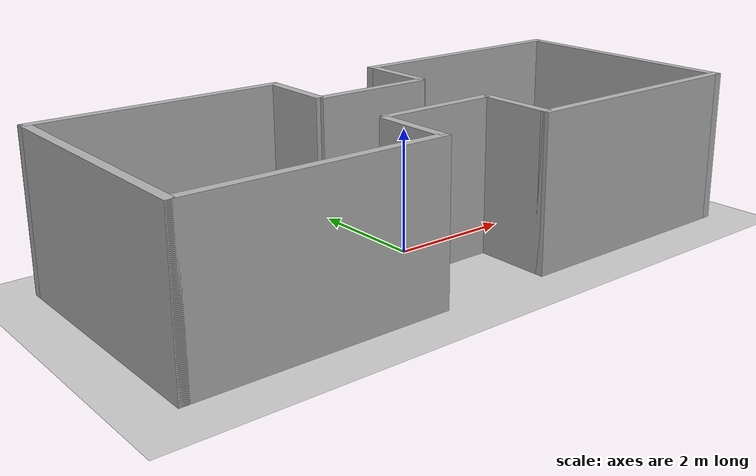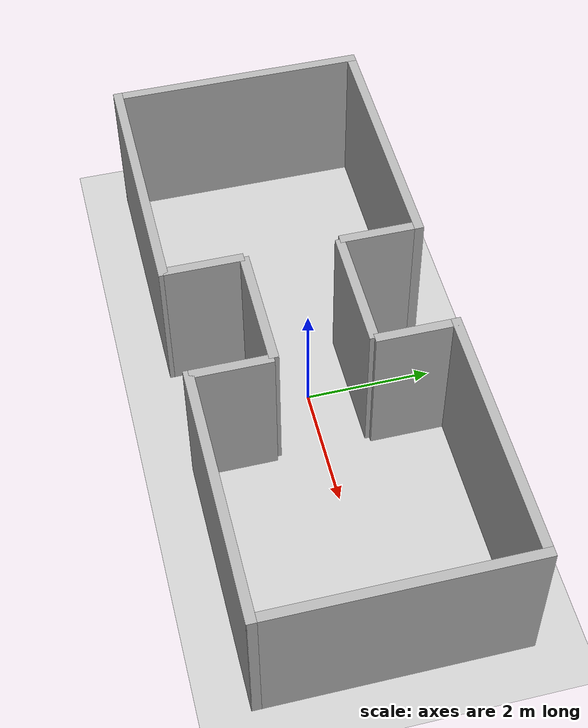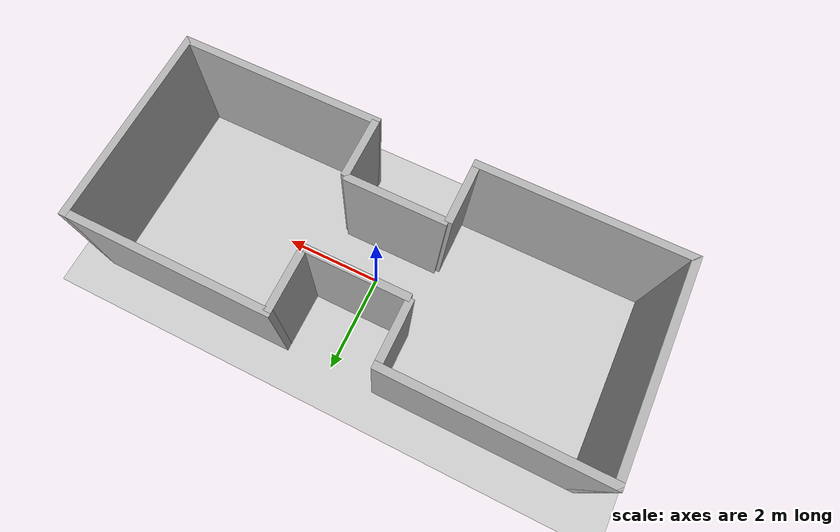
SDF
<?xml version="1.0"?>
<sdf version="1.6">
  <world name="default">

    <!-- Plugins del sistema -->
    <plugin filename="gz-sim-physics-system"
            name="gz::sim::systems::Physics"/>
    <plugin filename="gz-sim-user-commands-system"
            name="gz::sim::systems::UserCommands"/>
    <plugin filename="gz-sim-scene-broadcaster-system"
            name="gz::sim::systems::SceneBroadcaster"/>
    <plugin filename="gz-sim-sensors-system"
            name="gz::sim::systems::Sensors">
      <render_engine>ogre2</render_engine>
    </plugin>
    <plugin filename="gz-sim-imu-system"
            name="gz::sim::systems::Imu"/>

    <!-- Plano de suelo -->
    <include>
      <uri>https://fuel.gazebosim.org/1.0/OpenRobotics/models/Ground Plane</uri>
    </include>

    <!-- Sol -->
    <include>
      <uri>https://fuel.gazebosim.org/1.0/OpenRobotics/models/Sun</uri>
    </include>

    <scene>
      <shadows>false</shadows>
    </scene>

    <!-- Cámara por defecto: vista cenital -->
    <gui fullscreen='0'>
      <camera name='user_camera'>
        <pose frame=''>0 0 15 0 1.5707 0</pose>
        <view_controller>orbit</view_controller>
        <projection_type>perspective</projection_type>
      </camera>
    </gui>

    <physics type="ode">
      <real_time_update_rate>1000.0</real_time_update_rate>
      <max_step_size>0.001</max_step_size>
      <real_time_factor>1</real_time_factor>
    </physics>

    <!--  ROOM A — Paredes (4m × 4m, centro en -3, 0)   -->

    <!-- Room A: Pared Oeste (x = -5) -->
    <model name="wall_a_west">
      <static>true</static>
      <pose>-5 0 1.25 0 0 0</pose>
      <link name="link">
        <collision name="collision">
          <geometry><box><size>0.15 4.15 2.5</size></box></geometry>
        </collision>
        <visual name="visual">
          <geometry><box><size>0.15 4.15 2.5</size></box></geometry>
          <material>
            <ambient>0.7 0.7 0.7 1</ambient>
            <diffuse>0.7 0.7 0.7 1</diffuse>
          </material>
        </visual>
      </link>
    </model>

    <!-- Room A: Pared Sur (y = -2) -->
    <model name="wall_a_south">
      <static>true</static>
      <pose>-3 -2 1.25 0 0 0</pose>
      <link name="link">
        <collision name="collision">
          <geometry><box><size>4.15 0.15 2.5</size></box></geometry>
        </collision>
        <visual name="visual">
          <geometry><box><size>4.15 0.15 2.5</size></box></geometry>
          <material>
            <ambient>0.7 0.7 0.7 1</ambient>
            <diffuse>0.7 0.7 0.7 1</diffuse>
          </material>
        </visual>
      </link>
    </model>

    <!-- Room A: Pared Norte (y = 2) -->
    <model name="wall_a_north">
      <static>true</static>
      <pose>-3 2 1.25 0 0 0</pose>
      <link name="link">
        <collision name="collision">
          <geometry><box><size>4.15 0.15 2.5</size></box></geometry>
        </collision>
        <visual name="visual">
          <geometry><box><size>4.15 0.15 2.5</size></box></geometry>
          <material>
            <ambient>0.7 0.7 0.7 1</ambient>
            <diffuse>0.7 0.7 0.7 1</diffuse>
          </material>
        </visual>
      </link>
    </model>

    <!-- Room A: Pared Este-Sur (x = -1, y: -2 a -0.75) -->
    <model name="wall_a_east_south">
      <static>true</static>
      <pose>-1 -1.375 1.25 0 0 0</pose>
      <link name="link">
        <collision name="collision">
          <geometry><box><size>0.15 1.25 2.5</size></box></geometry>
        </collision>
        <visual name="visual">
          <geometry><box><size>0.15 1.25 2.5</size></box></geometry>
          <material>
            <ambient>0.7 0.7 0.7 1</ambient>
            <diffuse>0.7 0.7 0.7 1</diffuse>
          </material>
        </visual>
      </link>
    </model>

    <!-- Room A: Pared Este-Norte (x = -1, y: 0.75 a 2) -->
    <model name="wall_a_east_north">
      <static>true</static>
      <pose>-1 1.375 1.25 0 0 0</pose>
      <link name="link">
        <collision name="collision">
          <geometry><box><size>0.15 1.25 2.5</size></box></geometry>
        </collision>
        <visual name="visual">
          <geometry><box><size>0.15 1.25 2.5</size></box></geometry>
          <material>
            <ambient>0.7 0.7 0.7 1</ambient>
            <diffuse>0.7 0.7 0.7 1</diffuse>
          </material>
        </visual>
      </link>
    </model>

    <!--  PASILLO — Paredes (2m × 1.5m, centro en 0,0)  -->

    <!-- Pasillo: Pared Sur (y = -0.75) -->
    <model name="wall_corridor_south">
      <static>true</static>
      <pose>0 -0.75 1.25 0 0 0</pose>
      <link name="link">
        <collision name="collision">
          <geometry><box><size>2.0 0.15 2.5</size></box></geometry>
        </collision>
        <visual name="visual">
          <geometry><box><size>2.0 0.15 2.5</size></box></geometry>
          <material>
            <ambient>0.7 0.7 0.7 1</ambient>
            <diffuse>0.7 0.7 0.7 1</diffuse>
          </material>
        </visual>
      </link>
    </model>

    <!-- Pasillo: Pared Norte (y = 0.75) -->
    <model name="wall_corridor_north">
      <static>true</static>
      <pose>0 0.75 1.25 0 0 0</pose>
      <link name="link">
        <collision name="collision">
          <geometry><box><size>2.0 0.15 2.5</size></box></geometry>
        </collision>
        <visual name="visual">
          <geometry><box><size>2.0 0.15 2.5</size></box></geometry>
          <material>
            <ambient>0.7 0.7 0.7 1</ambient>
            <diffuse>0.7 0.7 0.7 1</diffuse>
          </material>
        </visual>
      </link>
    </model>

    <!--  ROOM B — Paredes (4m × 4m, centro en 3, 0)    -->

    <!-- Room B: Pared Este (x = 5) -->
    <model name="wall_b_east">
      <static>true</static>
      <pose>5 0 1.25 0 0 0</pose>
      <link name="link">
        <collision name="collision">
          <geometry><box><size>0.15 4.15 2.5</size></box></geometry>
        </collision>
        <visual name="visual">
          <geometry><box><size>0.15 4.15 2.5</size></box></geometry>
          <material>
            <ambient>0.7 0.7 0.7 1</ambient>
            <diffuse>0.7 0.7 0.7 1</diffuse>
          </material>
        </visual>
      </link>
    </model>

    <!-- Room B: Pared Sur (y = -2) -->
    <model name="wall_b_south">
      <static>true</static>
      <pose>3 -2 1.25 0 0 0</pose>
      <link name="link">
        <collision name="collision">
          <geometry><box><size>4.15 0.15 2.5</size></box></geometry>
        </collision>
        <visual name="visual">
          <geometry><box><size>4.15 0.15 2.5</size></box></geometry>
          <material>
            <ambient>0.7 0.7 0.7 1</ambient>
            <diffuse>0.7 0.7 0.7 1</diffuse>
          </material>
        </visual>
      </link>
    </model>

    <!-- Room B: Pared Norte (y = 2) -->
    <model name="wall_b_north">
      <static>true</static>
      <pose>3 2 1.25 0 0 0</pose>
      <link name="link">
        <collision name="collision">
          <geometry><box><size>4.15 0.15 2.5</size></box></geometry>
        </collision>
        <visual name="visual">
          <geometry><box><size>4.15 0.15 2.5</size></box></geometry>
          <material>
            <ambient>0.7 0.7 0.7 1</ambient>
            <diffuse>0.7 0.7 0.7 1</diffuse>
          </material>
        </visual>
      </link>
    </model>

    <!-- Room B: Pared Oeste-Sur (x = 1, y: -2 a -0.75) -->
    <model name="wall_b_west_south">
      <static>true</static>
      <pose>1 -1.375 1.25 0 0 0</pose>
      <link name="link">
        <collision name="collision">
          <geometry><box><size>0.15 1.25 2.5</size></box></geometry>
        </collision>
        <visual name="visual">
          <geometry><box><size>0.15 1.25 2.5</size></box></geometry>
          <material>
            <ambient>0.7 0.7 0.7 1</ambient>
            <diffuse>0.7 0.7 0.7 1</diffuse>
          </material>
        </visual>
      </link>
    </model>

    <!-- Room B: Pared Oeste-Norte (x = 1, y: 0.75 a 2) -->
    <model name="wall_b_west_north">
      <static>true</static>
      <pose>1 1.375 1.25 0 0 0</pose>
      <link name="link">
        <collision name="collision">
          <geometry><box><size>0.15 1.25 2.5</size></box></geometry>
        </collision>
        <visual name="visual">
          <geometry><box><size>0.15 1.25 2.5</size></box></geometry>
          <material>
            <ambient>0.7 0.7 0.7 1</ambient>
            <diffuse>0.7 0.7 0.7 1</diffuse>
          </material>
        </visual>
      </link>
    </model>

  </world>
</sdf>
